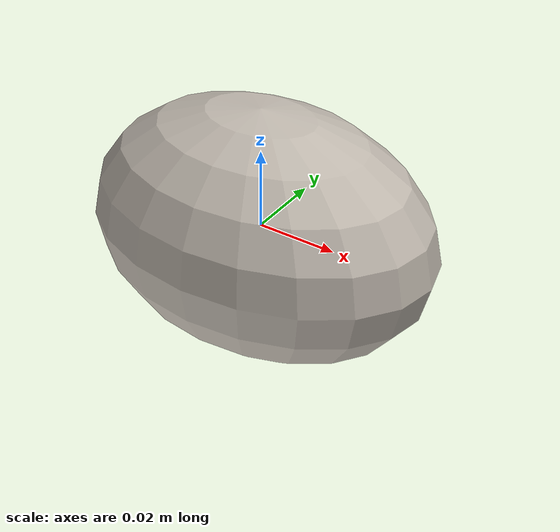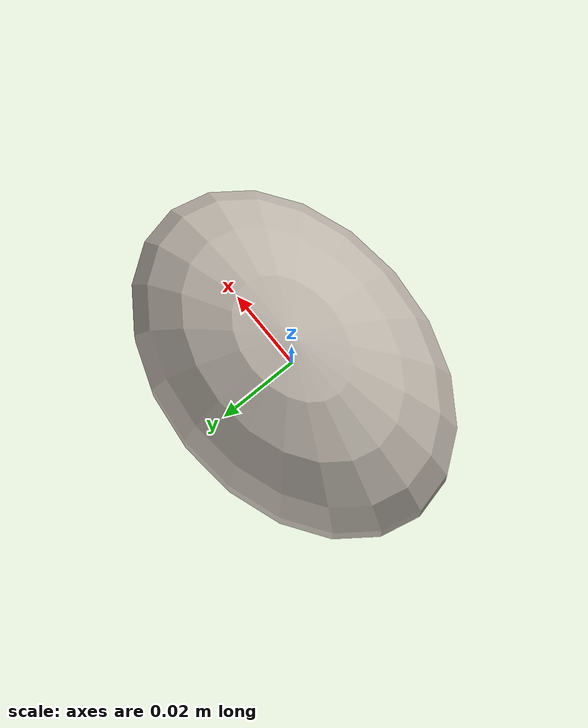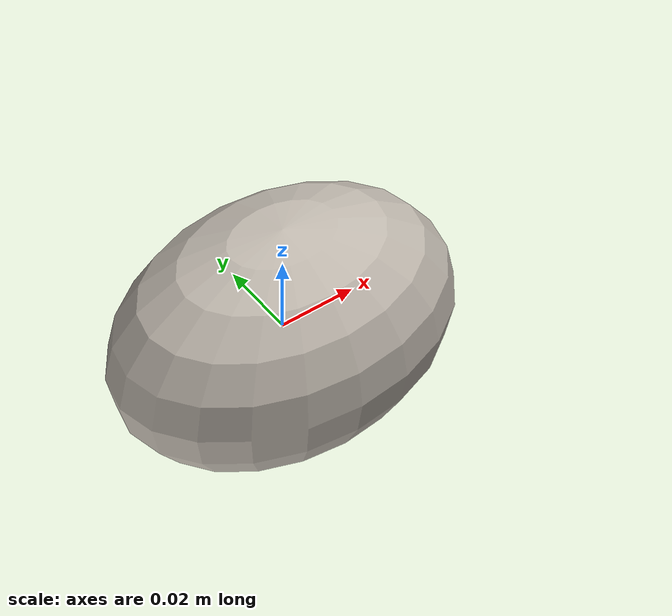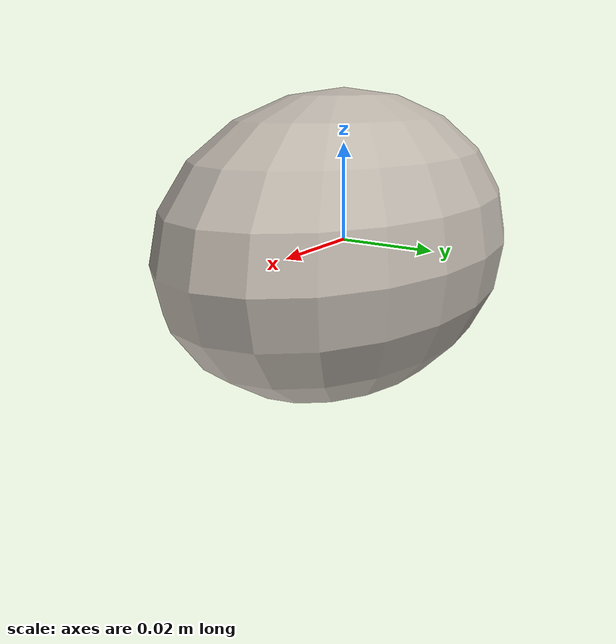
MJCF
<mujoco model="pear">
  <asset>
    <texture file="textures/fruits/pear.png" type="2d" name="tex-pear" />
    <material name="pear" reflectance="0.7" texrepeat="15 15" texture="tex-pear" texuniform="true"/>
  </asset>
  <worldbody>
    <body>
      <body name="collision">
        <geom pos="0 0 0" size="0.045 0.031 0.031" type="ellipsoid" solimp="0.998 0.998 0.001" solref="0.001 1" density="50" friction="0.95 0.3 0.1"  material="pear" group="1" condim="4"/>
      </body>

      <site rgba="0 0 0 0" size="0.005" pos="0 0 -0.045" name="bottom_site"/>
      <site rgba="0 0 0 0" size="0.005" pos="0 0 0.03" name="top_site"/>
      <site rgba="0 0 0 0" size="0.005" pos="0.06 0.06 0" name="horizontal_radius_site"/>
    </body>
  </worldbody>
</mujoco>
